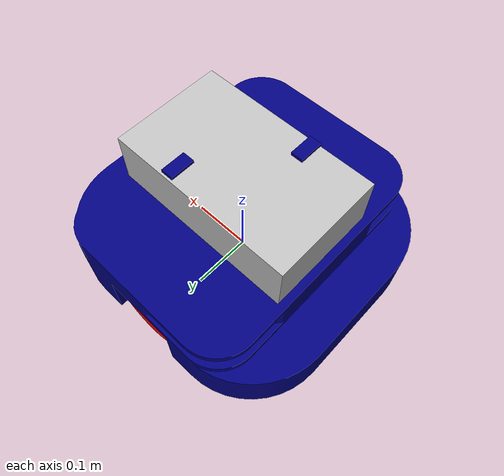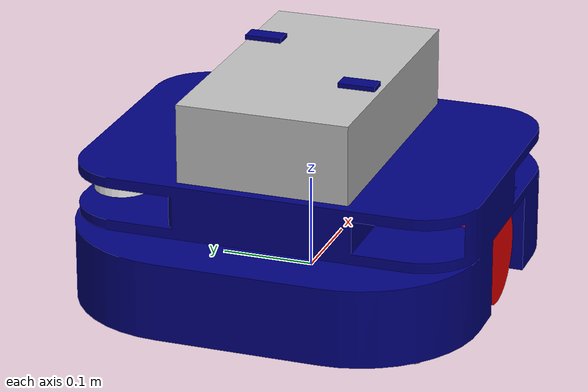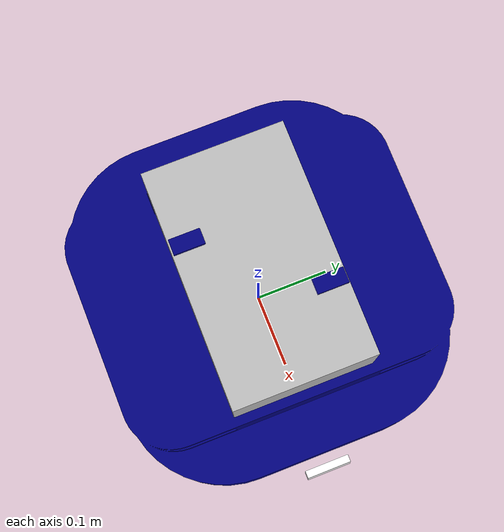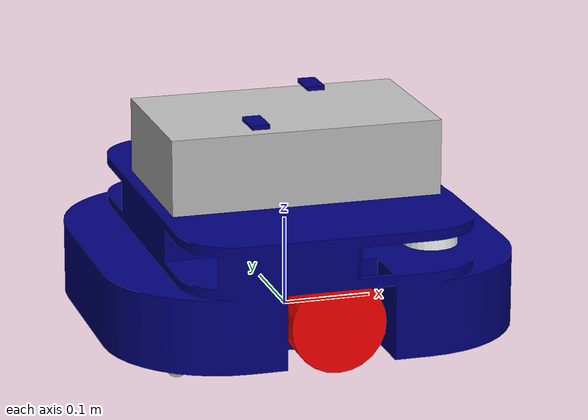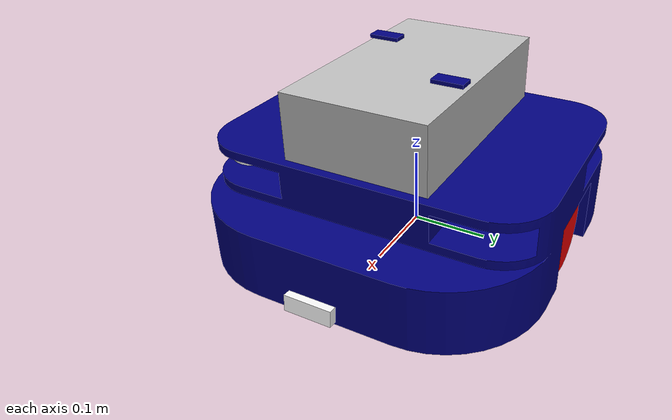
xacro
<?xml version="1.0"?>
<robot name="$(arg robot_name)" xmlns:xacro="http://www.ros.org/wiki/xacro">

    <!-- Declare launch arguments with default values -->
    <xacro:arg name="robot_name" default="my_robot"/>
    <xacro:arg name="namespace" default=""/>

    <!-- Set properties from arguments -->
    <xacro:property name="robot_name" value="$(arg robot_name)"/>
    <xacro:property name="namespace" value="$(arg namespace)"/>

    <!-- Keep robot_prefix empty - let robot_state_publisher handle frame prefixing -->
    <xacro:property name="robot_prefix" value="${namespace}/"/>

    <xacro:include filename="properties.xacro" />
    <xacro:include filename="base.xacro" />

</robot>

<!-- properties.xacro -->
<robot xmlns:xacro="http://www.ros.org/wiki/xacro">

    <material name="blue">
        <color rgba="0 0 0.5 1" />
    </material>

    <material name="grey">
        <color rgba="0.5 0.5 0.5 1" />
    </material>

    <material name="white">
        <color rgba="1.0 1.0 1.0 1" />
    </material>

    <material name="silver">
        <color rgba="0.75 0.75 0.75 1" />
    </material>

    <material name="red">
        <color rgba="1 0 0 1" />
    </material>

    <xacro:macro name="box_inertia" params="m l w h xyz rpy">
        <inertial>
            <origin xyz="${xyz}" rpy="${rpy}" />
            <mass value="${m}" />
            <inertia ixx="${(m / 12.0) * (l * l + h * h)}" ixy="0" ixz="0" iyy="${(m / 12.0) * (w * w + l * l)}" iyz="0" izz="${(m / 12.0) * (h * h + w * w)}" />
        </inertial>
    </xacro:macro>

    <xacro:macro name="cylinder_inertia" params="m r l xyz rpy">
        <inertial>
            <origin xyz="${xyz}" rpy="${rpy}" />
            <mass value="${m}" />
            <inertia ixx="${(m / 12.0) * (3 * r * r + l * l)}" ixy="0" ixz="0" iyy="${(m / 12.0) * (3 * r * r + l * l)}" iyz="0" izz="${(m / 2.0) * r * r}" />
        </inertial>
    </xacro:macro>

    <xacro:macro name="sphere_inertia" params="m r xyz rpy">
        <inertial>
            <origin xyz="${xyz}" rpy="${rpy}" />
            <mass value="${m}" />
            <inertia ixx="${(2.0 / 5.0) * m * r * r}" ixy="0" ixz="0" iyy="${(2.0 / 5.0) * m * r * r}" iyz="0" izz="${(2.0 / 5.0) * m * r * r}" />
        </inertial>
    </xacro:macro>

</robot>

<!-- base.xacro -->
<robot xmlns:xacro="http://www.ros.org/wiki/xacro">

    <xacro:property name="base_length" value="0.4" />
    <xacro:property name="base_width" value="0.4" />
    <xacro:property name="base_height" value="0.1" />
    <xacro:property name="wheel_radius" value="0.053" />
    <xacro:property name="wheel_length" value="0.05" />

    <link name="${robot_prefix}base_link">
        <visual>
            <geometry>
                <mesh filename="file://$(find hey_agv_new)/urdf/agv_base.dae"/>
            </geometry>
            <origin xyz="0 0 0" rpy="0 0 1.5708" />
            <material name="blue" />
        </visual>
        <xacro:box_inertia m="18.0" l="0.462" w="0.436" h="0.142" xyz="0 0 0" rpy="0 0 0" />
        <collision>
            <geometry>
                <mesh filename="file://$(find hey_agv_new)/urdf/agv_base.dae"/>
            </geometry>
             <origin xyz="0 0 0" rpy="0 0 1.5708" />
        </collision>
    </link>

    <xacro:macro name="wheel_link" params="prefix">
        <link name="${robot_prefix}${prefix}_wheel_link">
            <visual>
                <geometry>
                    <cylinder radius="${wheel_radius}" length="${wheel_length}" />
                </geometry>
                <origin xyz="0 0 0" rpy="${pi / 2.0} 0 0" />
                <material name="red" />
            </visual>
            <collision>
            <geometry>
                    <cylinder radius="${wheel_radius}" length="${wheel_length}" />
            </geometry>
            <origin xyz="0 0 0" rpy="${pi / 2.0} 0 0" />
            </collision>
            <xacro:cylinder_inertia m="0.5" r="${wheel_radius}" l="${2*wheel_length}" xyz="0 0 0" rpy="${pi / 2.0} 0 0" />
        </link>
    </xacro:macro>

    <xacro:wheel_link prefix="right" />
    <xacro:wheel_link prefix="left" />

    <joint name="${robot_prefix}base_left_wheel_joint" type="continuous">
        <parent link="${robot_prefix}base_link" />
        <child link="${robot_prefix}left_wheel_link" />
        <origin xyz="0 0.183 0.041" rpy="0 0 0" />
        <axis xyz="0 1 0" />
    </joint>

    <joint name="${robot_prefix}base_right_wheel_joint" type="continuous">
        <parent link="${robot_prefix}base_link" />
        <child link="${robot_prefix}right_wheel_link" />
        <origin xyz="0 -0.183 0.041" rpy="0 0 0" />
        <axis xyz="0 1 0" />
    </joint>

    <link name="${robot_prefix}gpu_lidar_right">
        <visual>
            <geometry>
                <cylinder radius="0.03" length="0.015" />
            </geometry>
            <origin xyz="0 0 0" rpy="0 0 0" />
            <material name="white" />
        </visual>
        <collision>
            <geometry>
                <cylinder radius="0.03" length="0.015" />
            </geometry>
            <origin xyz="0 0 0" rpy="0 0 0" />
        </collision>

    </link>

    <joint name="${robot_prefix}lidar_right_base_joint" type="fixed">
        <parent link="${robot_prefix}base_link" />
        <child link="${robot_prefix}gpu_lidar_right" />
        <origin xyz="0.115 -0.16789 0.12" rpy="0 0 0"/>
    </joint>

    <link name="${robot_prefix}gpu_lidar_left">
        <visual>
            <geometry>
                <cylinder radius="0.03" length="0.015" />
            </geometry>
            <origin xyz="0 0 0" rpy="0 0 0" />
            <material name="white" />
        </visual>
        <collision>
            <geometry>
                <cylinder radius="0.03" length="0.015" />
            </geometry>
            <origin xyz="0 0 0" rpy="0 0 0" />
        </collision>

    </link>

    <joint name="${robot_prefix}lidar_left_base_joint" type="fixed">
        <parent link="${robot_prefix}base_link" />
        <child link="${robot_prefix}gpu_lidar_left" />
        <origin xyz="-0.115 0.16789 0.12" rpy="0 0 3.14"/>
    </joint>

    <!-- make a square lift -->
    <link name="${robot_prefix}lift_link">
        <visual>
            <geometry>
                <box size="0.184 0.306 0.1" />
            </geometry>
            <origin xyz="0 0 0" rpy="0 0 0" />
            <material name="silver" />
        </visual>
        <collision>
            <geometry>
                <box size="0.184 0.306 0.1" />
            </geometry>
             <origin xyz="0 0 0" rpy="0 0 0" />
        </collision>
        <xacro:box_inertia m="3.0" l="0.306" w="0.184" h="0.1" xyz="0 0 0" rpy="0 0 0" />
    </link>

    <joint name="${robot_prefix}lift_base_joint" type="prismatic">
        <parent link="${robot_prefix}base_link" />
        <child link="${robot_prefix}lift_link" />
        <origin xyz="0 0 0.177" rpy="0 0 1.5708"/>
        <limit lower="0" upper="0.06" effort="1000.0" velocity="1.0"/>
        <axis xyz="0 0 1" />
    </joint>

    <!-- servo motor right-->
    <link name="${robot_prefix}lift_servo_motor_right_link">
        <visual>
            <geometry>
                <box size="0.04 0.02 0.005" />
            </geometry>
            <origin xyz="0 0 0" rpy="0 0 0" />
            <material name="blue" />
        </visual>
        <collision>
            <geometry>
                <box size="0.04 0.02 0.005" />
            </geometry>
             <origin xyz="0 0 0" rpy="0 0 0" />
        </collision>
        <xacro:box_inertia m="0.1" l="0.04" w="0.02" h="0.005" xyz="0 0 0" rpy="0 0 0" />
    </link>

    <joint name="${robot_prefix}lift_servo_motor_right_joint" type="revolute">
        <parent link="${robot_prefix}lift_link" />
        <child link="${robot_prefix}lift_servo_motor_right_link" />
        <origin xyz="0.07 -0.0525 0.0567" rpy="0 0 0"/>
        <axis xyz="0 0 1" />
        <limit lower="0.0" upper="1.57" effort="1.0" velocity="1.0"/>
    </joint>

    <!-- servo motor left -->
    <link name="${robot_prefix}lift_servo_motor_left_link">
        <visual>
            <geometry>
                <box size="0.04 0.02 0.005" />
            </geometry>
            <origin xyz="0 0 0" rpy="0 0 0" />
            <material name="blue" />
        </visual>
        <collision>
            <geometry>
                <box size="0.04 0.02 0.005" />
            </geometry>
             <origin xyz="0 0 0" rpy="0 0 0" />
        </collision>
        <xacro:box_inertia m="0.1" l="0.04" w="0.02" h="0.005" xyz="0 0 0" rpy="0 0 0" />
    </link>

    <joint name="${robot_prefix}lift_servo_motor_left_joint" type="revolute">
        <parent link="${robot_prefix}lift_link" />
        <child link="${robot_prefix}lift_servo_motor_left_link" />
        <origin xyz="-0.07 0.0525 0.0567" rpy="0 0 0"/>
        <axis xyz="0 0 1" />
        <limit lower="0.0" upper="1.57" effort="1.0" velocity="1.0"/>
    </joint>

    <!-- Caster wheel macro -->
    <xacro:macro name="caster_wheel" params="prefix">
        <link name="${robot_prefix}${prefix}_caster_wheel">
            <visual>
                <geometry>
                    <sphere radius="0.0119" />
                </geometry>
                <origin xyz="0 0 0" rpy="0 0 0" />
                <material name="silver" />
            </visual>
            <collision>
                <geometry>
                    <sphere radius="0.0119" />
                </geometry>
                <origin xyz="0 0 0" rpy="0 0 0" />
            </collision>
            <xacro:sphere_inertia m="0.1" r="0.012" xyz="0 0 0" rpy="0 0 0" />
        </link>
    </xacro:macro>

    <!-- Create 4 caster wheels -->
    <xacro:caster_wheel prefix="front_right"/>
    <xacro:caster_wheel prefix="front_left"/>
    <xacro:caster_wheel prefix="rear_right"/>
    <xacro:caster_wheel prefix="rear_left"/>

    <!-- Add appropriate joints with correct positions -->
    <joint name="${robot_prefix}front_right_caster_joint" type="fixed">
        <parent link="${robot_prefix}base_link"/>
        <child link="${robot_prefix}front_right_caster_wheel"/>
        <origin xyz="0.17 -0.17 0.0" rpy="0 0 0"/>
    </joint>

    <joint name="${robot_prefix}front_left_caster_joint" type="fixed">
        <parent link="${robot_prefix}base_link"/>
        <child link="${robot_prefix}front_left_caster_wheel"/>
        <origin xyz="0.17 0.17 0.0" rpy="0 0 0"/>
    </joint>

    <joint name="${robot_prefix}rear_right_caster_joint" type="fixed">
        <parent link="${robot_prefix}base_link"/>
        <child link="${robot_prefix}rear_right_caster_wheel"/>
        <origin xyz="-0.17 -0.17 0.0" rpy="0 0 0"/>
    </joint>

    <joint name="${robot_prefix}rear_left_caster_joint" type="fixed">
        <parent link="${robot_prefix}base_link"/>
        <child link="${robot_prefix}rear_left_caster_wheel"/>
        <origin xyz="-0.17 0.17 0.0" rpy="0 0 0"/>
    </joint>

    <link name="${robot_prefix}camera">
        <visual>
            <geometry>
                <box size="0.01 0.06 0.02" />
            </geometry>
            <origin xyz="0 0 0" rpy="0 0 0" />
            <material name="white" />
        </visual>
        <collision>
            <geometry>
                <box size="0.01 0.06 0.02" />
            </geometry>
             <origin xyz="0 0 0" rpy="0 0 0" />
        </collision>
        <xacro:box_inertia m="0.03" l="0.02" w="0.06" h="0.02" xyz="0 0 0" rpy="0 0 0" />
    </link>

    <joint name="${robot_prefix}camera_base_joint_optical" type="fixed">
        <parent link="${robot_prefix}camera" />
        <child link="${robot_prefix}camera_optical_link" />
        <origin xyz="0 0 0" rpy="-1.5708 0 -1.5708"/>
    </joint>

    <link name="${robot_prefix}camera_optical_link" ></link>

    <!-- for optical correctness -->
    <joint name="${robot_prefix}camera_base_joint" type="fixed">
        <parent link="${robot_prefix}base_link" />
        <child link="${robot_prefix}camera" />
        <origin xyz="0.25 0 0.03" rpy="0 -0.1 0"/>
    </joint>

    <gazebo reference="${robot_prefix}base_link">
        <material>Gazebo/DarkGrey</material>
    </gazebo>

    <gazebo reference="${robot_prefix}right_wheel_link">
        <material>Gazebo/Red</material>
        <mu1>0.98</mu1>
        <mu2>0.98</mu2>
    </gazebo>

    <gazebo reference="${robot_prefix}left_wheel_link">
        <material>Gazebo/Red</material>
        <mu1>0.98</mu1>
        <mu2>0.98</mu2>
    </gazebo>

    <gazebo reference="${robot_prefix}front_right_caster_wheel">
        <material>Gazebo/Black</material>
        <mu1>0.0</mu1>
        <mu2>0.0</mu2>
    </gazebo>

    <gazebo reference="${robot_prefix}lift_link">
        <material>Gazebo/White</material>
        <mu1>0.8</mu1>
        <mu2>0.8</mu2>
    </gazebo>

    <gazebo reference="${robot_prefix}front_left_caster_wheel">
        <material>Gazebo/Black</material>
        <mu1>0.0</mu1>
        <mu2>0.0</mu2>
    </gazebo>

    <gazebo reference="${robot_prefix}rear_right_caster_wheel">
        <material>Gazebo/Black</material>
        <mu1>0.0</mu1>
        <mu2>0.0</mu2>
    </gazebo>

    <gazebo reference="${robot_prefix}rear_left_caster_wheel">
        <material>Gazebo/Black</material>
        <mu1>0.0</mu1>
        <mu2>0.0</mu2>
    </gazebo>

    <gazebo reference="${robot_prefix}lift_servo_motor_right_link">
        <material>Gazebo/Red</material>
        <mu1>0.5</mu1>
        <mu2>0.5</mu2>
    </gazebo>
    <gazebo reference="${robot_prefix}lift_servo_motor_left_link">
        <material>Gazebo/Red</material>
        <mu1>0.5</mu1>
        <mu2>0.5</mu2>
    </gazebo>

    <gazebo reference="${robot_prefix}camera">
        <sensor type="camera" name="camera">
          <camera>
            <horizontal_fov>1.047</horizontal_fov>
            <image>
              <width>320</width>
              <height>240</height>
            </image>
            <clip>
              <near>0.01</near>
              <far>50</far>
            </clip>
          </camera>
          <always_on>1</always_on>
          <update_rate>30</update_rate>
          <visualize>true</visualize>
        </sensor>
    </gazebo>

    <gazebo reference="${robot_prefix}gpu_lidar_right">
        <material>Gazebo/Black</material>
        <sensor name='gpu_lidar_right' type='gpu_lidar'>
            <pose relative_to='${robot_prefix}gpu_lidar_right'>0 0 0 0 0 0</pose>
            <topic>${namespace}/lidar1</topic>
            <update_rate>10</update_rate>
            <ray>
                <scan>
                    <horizontal>
                        <samples>1800</samples>
                        <resolution>1</resolution>
                        <min_angle>-3.14</min_angle>
                        <max_angle>3.14</max_angle>
                    </horizontal>
                    <vertical>
                        <samples>1</samples>
                        <resolution>0.01</resolution>
                        <min_angle>0</min_angle>
                        <max_angle>0</max_angle>
                    </vertical>
                </scan>
                <range>
                    <min>0.5</min>
                    <max>10.0</max>
                    <resolution>0.01</resolution>
                </range>
            </ray>
            <always_on>1</always_on>
            <visualize>true</visualize>
        </sensor>
    </gazebo>

    <gazebo reference="${robot_prefix}gpu_lidar_left">
        <material>Gazebo/Black</material>
        <sensor name='gpu_lidar_left' type='gpu_lidar'>
            <pose relative_to='${robot_prefix}gpu_lidar_left'>0 0 0 0 0 0</pose>
            <topic>${namespace}/lidar2</topic>
            <update_rate>10</update_rate>
            <ray>
                <scan>
                    <horizontal>
                        <samples>1800</samples>
                        <resolution>1</resolution>
                        <min_angle>-3.14</min_angle>
                        <max_angle>3.14</max_angle>
                    </horizontal>
                    <vertical>
                        <samples>1</samples>
                        <resolution>0.01</resolution>
                        <min_angle>0</min_angle>
                        <max_angle>0</max_angle>
                    </vertical>
                </scan>
                <range>
                    <min>0.5</min>
                    <max>10.0</max>
                    <resolution>0.01</resolution>
                </range>
            </ray>
            <always_on>1</always_on>
            <visualize>true</visualize>
        </sensor>
    </gazebo>

    <gazebo>
        <plugin filename="gz-sim-diff-drive-system"
                name="gz::sim::systems::DiffDrive">
            <left_joint>${robot_prefix}base_left_wheel_joint</left_joint>
            <right_joint>${robot_prefix}base_right_wheel_joint</right_joint>
            <wheel_separation>0.316</wheel_separation>
            <wheel_radius>0.053</wheel_radius>
            <odom_publish_frequency>10</odom_publish_frequency>
            <topic>${namespace}/cmd_vel</topic>
            <odom_topic>${namespace}/odom</odom_topic>
            <frame_id>${robot_prefix}odom</frame_id>
            <child_frame_id>${robot_prefix}base_link</child_frame_id>
        </plugin>
    </gazebo>

    <!-- Individual sensors plugin with unique scene name per robot -->

    <gazebo>
        <plugin
            filename="gz-sim-joint-controller-system"
            name="gz::sim::systems::JointController">
            <joint_name>${robot_prefix}lift_servo_motor_left_joint</joint_name>
            <topic>${namespace}/lift_servo_cmd</topic>
            <initial_velocity>0.0</initial_velocity>
            </plugin>
    </gazebo>

    <gazebo>
        <plugin
            filename="gz-sim-joint-controller-system"
            name="gz::sim::systems::JointController">
            <joint_name>${robot_prefix}lift_servo_motor_right_joint</joint_name>
            <topic>${namespace}/lift_servo_cmd</topic>
            <initial_velocity>0.0</initial_velocity>
            </plugin>
    </gazebo>

     <gazebo>
        <plugin
            filename="gz-sim-joint-controller-system"
            name="gz::sim::systems::JointController">
            <joint_name>${robot_prefix}lift_base_joint</joint_name>
            <initial_velocity>0.0</initial_velocity>
            <topic>${namespace}/lift_cmd</topic>
        </plugin>
    </gazebo>

    <gazebo>
        <plugin
            filename="gz-sim-joint-state-publisher-system"
            name="gz::sim::systems::JointStatePublisher">
            <topic>${namespace}/joint_states</topic>
            <joint_name>${robot_prefix}base_left_wheel_joint</joint_name>
            <joint_name>${robot_prefix}base_right_wheel_joint</joint_name>
            <joint_name>${robot_prefix}lift_base_joint</joint_name>
            <joint_name>${robot_prefix}lift_servo_motor_left_joint</joint_name>
            <joint_name>${robot_prefix}lift_servo_motor_right_joint</joint_name>
            </plugin>
    </gazebo>

</robot>
